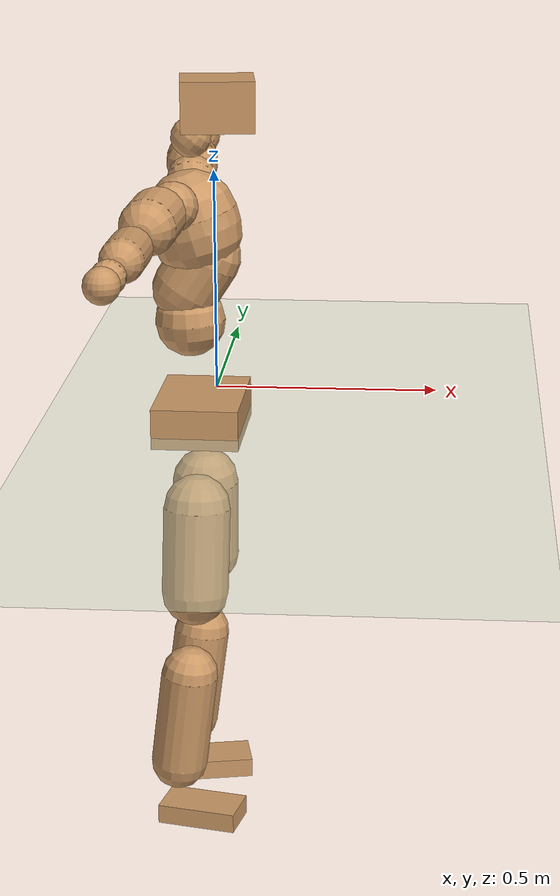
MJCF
<mujoco model="humanoid">
  <compiler coordinate="local" angle="radian"/>
  <default>
    <joint damping="0.0" armature="0.01" stiffness="0.0" limited="true"/>
    <geom conaffinity="1" condim="3" contype="7" margin="0.001" rgba="0.8 0.6 .4 1"/>
  </default>
  <asset>
    <texture type="skybox" builtin="gradient" rgb1=".4 .5 .6" rgb2="0 0 0" width="100" height="100"/>
    <texture builtin="flat" height="1278" mark="cross" markrgb="1 1 1" name="texgeom" random="0.01" rgb1="0.8 0.6 0.4" rgb2="0.8 0.6 0.4" type="cube" width="127"/>
    <texture builtin="checker" height="100" name="texplane" rgb1="0 0 0" rgb2="0.8 0.8 0.8" type="2d" width="100"/>
    <material name="MatPlane" reflectance="0.5" shininess="1" specular="1" texrepeat="60 60" texture="texplane"/>
    <material name="geom" texture="texgeom" texuniform="true"/>
  </asset>
  <worldbody>
    <light cutoff="100" diffuse="1 1 1" dir="-0 0 -1.3" directional="true" exponent="1" pos="0 0 1.3" specular=".1 .1 .1"/>
    <geom conaffinity="1" condim="3" name="floor" pos="0 0 0" rgba="0.8 0.9 0.8 1" size="100 100 .2" type="plane" material="MatPlane"/>
    <body name="Pelvis" pos="0.0012 -0.2463 0.0305">
      <freejoint name="Pelvis"/>
      <geom type="box" contype="1" conaffinity="1" density="5359.374469" pos="-0.0075 0.0001 -0.0138" size="0.0934 0.1306 0.0438" quat="1.0000 0.0000 0.0000 -0.0074" name="Pelvis"/>
      <body name="L_Hip" pos="-0.011 0.0839 -0.1006">
        <joint name="L_Hip_x" type="hinge" pos="0 0 0" axis="1 0 0" stiffness="1600" damping="160" armature="0.02" range="-180.0000 180.0000"/>
        <joint name="L_Hip_y" type="hinge" pos="0 0 0" axis="0 1 0" stiffness="1600" damping="160" armature="0.02" range="-180.0000 180.0000"/>
        <joint name="L_Hip_z" type="hinge" pos="0 0 0" axis="0 0 1" stiffness="1600" damping="160" armature="0.02" range="-180.0000 180.0000"/>
        <geom type="capsule" contype="1" conaffinity="1" density="2040.816327" size="0.0734" fromto="-0.0017 0.0084 -0.1030 -0.0046 0.0230 -0.2837" name="L_Hip"/>
        <body name="L_Knee" pos="-0.0062 0.0314 -0.3867">
          <joint name="L_Knee_x" type="hinge" pos="0 0 0" axis="1 0 0" stiffness="1600" damping="160" armature="0.02" range="-180.0000 180.0000"/>
          <joint name="L_Knee_y" type="hinge" pos="0 0 0" axis="0 1 0" stiffness="1600" damping="160" armature="0.02" range="-180.0000 180.0000"/>
          <joint name="L_Knee_z" type="hinge" pos="0 0 0" axis="0 0 1" stiffness="1600" damping="160" armature="0.02" range="-180.0000 180.0000"/>
          <geom type="capsule" contype="1" conaffinity="1" density="1234.567901" size="0.0624" fromto="-0.0120 -0.0028 -0.0916 -0.0408 -0.0094 -0.3102" name="L_Knee"/>
          <body name="L_Ankle" pos="-0.0528 -0.0122 -0.4018">
            <joint name="L_Ankle_x" type="hinge" pos="0 0 0" axis="1 0 0" stiffness="1600" damping="160" armature="0.02" range="-180.0000 180.0000"/>
            <joint name="L_Ankle_y" type="hinge" pos="0 0 0" axis="0 1 0" stiffness="1600" damping="160" armature="0.02" range="-180.0000 180.0000"/>
            <joint name="L_Ankle_z" type="hinge" pos="0 0 0" axis="0 0 1" stiffness="1600" damping="160" armature="0.02" range="-180.0000 180.0000"/>
            <geom type="box" contype="1" conaffinity="1" density="999.999989" pos="0.0612 0.0125 -0.0282" size="0.0882 0.0495 0.0215" quat="0.9949 0.0000 0.0000 0.1004" name="L_Ankle"/>
            <body name="L_Toe" pos="0.1224 0.0249 -0.0565">
              <joint name="L_Toe_x" type="hinge" pos="0 0 0" axis="1 0 0" stiffness="1000" damping="100" armature="0.02" range="-180.0000 180.0000"/>
              <joint name="L_Toe_y" type="hinge" pos="0 0 0" axis="0 1 0" stiffness="1000" damping="100" armature="0.02" range="-180.0000 180.0000"/>
              <joint name="L_Toe_z" type="hinge" pos="0 0 0" axis="0 0 1" stiffness="1000" damping="100" armature="0.02" range="-180.0000 180.0000"/>
              <geom type="box" contype="1" conaffinity="1" density="8404292.780096" pos="0.0000 0.0000 0.0304" size="0.0009 0.0025 0.0012" quat="0.9943 0.0000 0.0000 0.1065" name="L_Toe"/>
            </body>
          </body>
        </body>
      </body>
      <body name="R_Hip" pos="-0.0083 -0.0799 -0.0991">
        <joint name="R_Hip_x" type="hinge" pos="0 0 0" axis="1 0 0" stiffness="1600" damping="160" armature="0.02" range="-180.0000 180.0000"/>
        <joint name="R_Hip_y" type="hinge" pos="0 0 0" axis="0 1 0" stiffness="1600" damping="160" armature="0.02" range="-180.0000 180.0000"/>
        <joint name="R_Hip_z" type="hinge" pos="0 0 0" axis="0 0 1" stiffness="1600" damping="160" armature="0.02" range="-180.0000 180.0000"/>
        <geom type="capsule" contype="1" conaffinity="1" density="2040.816327" size="0.0725" fromto="-0.0027 -0.0097 -0.1021 -0.0077 -0.0278 -0.2930" name="R_Hip"/>
        <body name="R_Knee" pos="-0.0103 -0.0374 -0.3951">
          <joint name="R_Knee_x" type="hinge" pos="0 0 0" axis="1 0 0" stiffness="1600" damping="160" armature="0.02" range="-180.0000 180.0000"/>
          <joint name="R_Knee_y" type="hinge" pos="0 0 0" axis="0 1 0" stiffness="1600" damping="160" armature="0.02" range="-180.0000 180.0000"/>
          <joint name="R_Knee_z" type="hinge" pos="0 0 0" axis="0 0 1" stiffness="1600" damping="160" armature="0.02" range="-180.0000 180.0000"/>
          <geom type="capsule" contype="1" conaffinity="1" density="1234.567901" size="0.0624" fromto="-0.0118 0.0033 -0.0916 -0.0398 0.0112 -0.3100" name="R_Knee"/>
          <body name="R_Ankle" pos="-0.0516 0.0146 -0.4016">
            <joint name="R_Ankle_x" type="hinge" pos="0 0 0" axis="1 0 0" stiffness="1600" damping="160" armature="0.02" range="-180.0000 180.0000"/>
            <joint name="R_Ankle_y" type="hinge" pos="0 0 0" axis="0 1 0" stiffness="1600" damping="160" armature="0.02" range="-180.0000 180.0000"/>
            <joint name="R_Ankle_z" type="hinge" pos="0 0 0" axis="0 0 1" stiffness="1600" damping="160" armature="0.02" range="-180.0000 180.0000"/>
            <geom type="box" contype="1" conaffinity="1" density="999.999999" pos="0.0631 -0.0135 -0.0248" size="0.0883 0.0491 0.0215" quat="0.9944 0.0000 0.0000 -0.1055" name="R_Ankle"/>
            <body name="R_Toe" pos="0.1262 -0.0271 -0.0497">
              <joint name="R_Toe_x" type="hinge" pos="0 0 0" axis="1 0 0" stiffness="1000" damping="100" armature="0.02" range="-180.0000 180.0000"/>
              <joint name="R_Toe_y" type="hinge" pos="0 0 0" axis="0 1 0" stiffness="1000" damping="100" armature="0.02" range="-180.0000 180.0000"/>
              <joint name="R_Toe_z" type="hinge" pos="0 0 0" axis="0 0 1" stiffness="1000" damping="100" armature="0.02" range="-180.0000 180.0000"/>
              <geom type="box" contype="1" conaffinity="1" density="8201296.981462" pos="0.0000 0.0000 0.0273" size="0.0009 0.0024 0.0012" quat="0.9953 0.0000 0.0000 -0.0965" name="R_Toe"/>
            </body>
          </body>
        </body>
      </body>
      <body name="Torso" pos="-0.0258 -0.0033 0.1167">
        <joint name="Torso_x" type="hinge" pos="0 0 0" axis="1 0 0" stiffness="2000" damping="200" armature="0.02" range="-180.0000 180.0000"/>
        <joint name="Torso_y" type="hinge" pos="0 0 0" axis="0 1 0" stiffness="2000" damping="200" armature="0.02" range="-180.0000 180.0000"/>
        <joint name="Torso_z" type="hinge" pos="0 0 0" axis="0 0 1" stiffness="2000" damping="200" armature="0.02" range="-180.0000 180.0000"/>
        <geom type="capsule" contype="1" conaffinity="1" density="2040.816327" size="0.076" fromto="-0.0029 0.0021 0.0759 -0.0030 0.0021 0.0779" name="Torso"/>
        <body name="Spine" pos="-0.0059 0.0042 0.1539">
          <joint name="Spine_x" type="hinge" pos="0 0 0" axis="1 0 0" stiffness="2000" damping="200" armature="0.02" range="-180.0000 180.0000"/>
          <joint name="Spine_y" type="hinge" pos="0 0 0" axis="0 1 0" stiffness="2000" damping="200" armature="0.02" range="-180.0000 180.0000"/>
          <joint name="Spine_z" type="hinge" pos="0 0 0" axis="0 0 1" stiffness="2000" damping="200" armature="0.02" range="-180.0000 180.0000"/>
          <geom type="capsule" contype="1" conaffinity="1" density="2040.816327" size="0.0737" fromto="0.0398 0.0009 0.0621 -0.0044 -0.0001 -0.0068" name="Spine"/>
          <body name="Chest" pos="0.0354 0.0008 0.0552">
            <joint name="Chest_x" type="hinge" pos="0 0 0" axis="1 0 0" stiffness="2000" damping="200" armature="0.02" range="-180.0000 180.0000"/>
            <joint name="Chest_y" type="hinge" pos="0 0 0" axis="0 1 0" stiffness="2000" damping="200" armature="0.02" range="-180.0000 180.0000"/>
            <joint name="Chest_z" type="hinge" pos="0 0 0" axis="0 0 1" stiffness="2000" damping="200" armature="0.02" range="-180.0000 180.0000"/>
            <geom type="capsule" contype="1" conaffinity="1" density="2040.816327" size="0.0992" fromto="-0.0266 -0.0001 0.0955 -0.0178 -0.0000 0.0640" name="Chest"/>
            <body name="Neck" pos="-0.0522 0.0004 0.2285">
              <joint name="Neck_x" type="hinge" pos="0 0 0" axis="1 0 0" stiffness="1000" damping="100" armature="0.02" range="-180.0000 180.0000"/>
              <joint name="Neck_y" type="hinge" pos="0 0 0" axis="0 1 0" stiffness="1000" damping="100" armature="0.02" range="-180.0000 180.0000"/>
              <joint name="Neck_z" type="hinge" pos="0 0 0" axis="0 0 1" stiffness="1000" damping="100" armature="0.02" range="-180.0000 180.0000"/>
              <geom type="capsule" contype="1" conaffinity="1" density="1000" size="0.0426" fromto="0.0264 0.0024 0.0334 0.0277 0.0025 0.0349" name="Neck"/>
              <body name="Head" pos="0.0541 0.005 0.0683">
                <joint name="Head_x" type="hinge" pos="0 0 0" axis="1 0 0" stiffness="1000" damping="100" armature="0.02" range="-180.0000 180.0000"/>
                <joint name="Head_y" type="hinge" pos="0 0 0" axis="0 1 0" stiffness="1000" damping="100" armature="0.02" range="-180.0000 180.0000"/>
                <joint name="Head_z" type="hinge" pos="0 0 0" axis="0 0 1" stiffness="1000" damping="100" armature="0.02" range="-180.0000 180.0000"/>
                <geom type="box" contype="1" conaffinity="1" density="2250" pos="0.0280 0.0035 0.0352" size="0.0776 0.0612 0.0539" quat="0.9981 0.0000 0.0000 0.0618" name="Head"/>
              </body>
            </body>
            <body name="L_Thorax" pos="-0.0363 0.079 0.1267">
              <joint name="L_Thorax_x" type="hinge" pos="0 0 0" axis="1 0 0" stiffness="1000" damping="100" armature="0.02" range="-180.0000 180.0000"/>
              <joint name="L_Thorax_y" type="hinge" pos="0 0 0" axis="0 1 0" stiffness="1000" damping="100" armature="0.02" range="-180.0000 180.0000"/>
              <joint name="L_Thorax_z" type="hinge" pos="0 0 0" axis="0 0 1" stiffness="1000" damping="100" armature="0.02" range="-180.0000 180.0000"/>
              <geom type="capsule" contype="1" conaffinity="1" density="1000" size="0.0539" fromto="-0.0040 0.0498 0.0203 -0.0031 0.0387 0.0157" name="L_Thorax"/>
              <body name="L_Shoulder" pos="-0.007 0.0885 0.036">
                <joint name="L_Shoulder_x" type="hinge" pos="0 0 0" axis="1 0 0" stiffness="1000" damping="100" armature="0.02" range="-720.0000 720.0000"/>
                <joint name="L_Shoulder_y" type="hinge" pos="0 0 0" axis="0 1 0" stiffness="1000" damping="100" armature="0.02" range="-720.0000 720.0000"/>
                <joint name="L_Shoulder_z" type="hinge" pos="0 0 0" axis="0 0 1" stiffness="1000" damping="100" armature="0.02" range="-720.0000 720.0000"/>
                <geom type="capsule" contype="1" conaffinity="1" density="1000" size="0.0569" fromto="-0.0106 0.0861 -0.0054 -0.0211 0.1719 -0.0108" name="L_Shoulder"/>
                <body name="L_Elbow" pos="-0.0317 0.258 -0.0162">
                  <joint name="L_Elbow_x" type="hinge" pos="0 0 0" axis="1 0 0" stiffness="1000" damping="100" armature="0.02" range="-720.0000 720.0000"/>
                  <joint name="L_Elbow_y" type="hinge" pos="0 0 0" axis="0 1 0" stiffness="1000" damping="100" armature="0.02" range="-720.0000 720.0000"/>
                  <joint name="L_Elbow_z" type="hinge" pos="0 0 0" axis="0 0 1" stiffness="1000" damping="100" armature="0.02" range="-720.0000 720.0000"/>
                  <geom type="capsule" contype="1" conaffinity="1" density="1000" size="0.0431" fromto="0.0009 0.0730 0.0028 0.0022 0.1770 0.0068" name="L_Elbow"/>
                  <body name="L_Wrist" pos="0.0031 0.25 0.0096">
                    <joint name="L_Wrist_x" type="hinge" pos="0 0 0" axis="1 0 0" stiffness="600" damping="60" armature="0.02" range="-180.0000 180.0000"/>
                    <joint name="L_Wrist_y" type="hinge" pos="0 0 0" axis="0 1 0" stiffness="600" damping="60" armature="0.02" range="-180.0000 180.0000"/>
                    <joint name="L_Wrist_z" type="hinge" pos="0 0 0" axis="0 0 1" stiffness="600" damping="60" armature="0.02" range="-180.0000 180.0000"/>
                    <geom type="capsule" contype="1" conaffinity="1" density="1000" size="0.0324" fromto="-0.0068 0.0414 -0.0051 -0.0071 0.0434 -0.0053" name="L_Wrist"/>
                    <body name="L_Hand" pos="-0.0139 0.0848 -0.0104">
                      <joint name="L_Hand_x" type="hinge" pos="0 0 0" axis="1 0 0" stiffness="600" damping="60" armature="0.02" range="-180.0000 180.0000"/>
                      <joint name="L_Hand_y" type="hinge" pos="0 0 0" axis="0 1 0" stiffness="600" damping="60" armature="0.02" range="-180.0000 180.0000"/>
                      <joint name="L_Hand_z" type="hinge" pos="0 0 0" axis="0 0 1" stiffness="600" damping="60" armature="0.02" range="-180.0000 180.0000"/>
                      <geom type="sphere" contype="1" conaffinity="1" density="1000" size="0.0343" pos="0.0000 0.0000 0.0000" name="L_Hand"/>
                    </body>
                  </body>
                </body>
              </body>
            </body>
            <body name="R_Thorax" pos="-0.0448 -0.0797 0.1234">
              <joint name="R_Thorax_x" type="hinge" pos="0 0 0" axis="1 0 0" stiffness="1000" damping="100" armature="0.02" range="-180.0000 180.0000"/>
              <joint name="R_Thorax_y" type="hinge" pos="0 0 0" axis="0 1 0" stiffness="1000" damping="100" armature="0.02" range="-180.0000 180.0000"/>
              <joint name="R_Thorax_z" type="hinge" pos="0 0 0" axis="0 0 1" stiffness="1000" damping="100" armature="0.02" range="-180.0000 180.0000"/>
              <geom type="capsule" contype="1" conaffinity="1" density="1000" size="0.0528" fromto="-0.0047 -0.0491 0.0190 -0.0045 -0.0465 0.0180" name="R_Thorax"/>
              <body name="R_Shoulder" pos="-0.0092 -0.0956 0.0371">
                <joint name="R_Shoulder_x" type="hinge" pos="0 0 0" axis="1 0 0" stiffness="1000" damping="100" armature="0.02" range="-720.0000 720.0000"/>
                <joint name="R_Shoulder_y" type="hinge" pos="0 0 0" axis="0 1 0" stiffness="1000" damping="100" armature="0.02" range="-720.0000 720.0000"/>
                <joint name="R_Shoulder_z" type="hinge" pos="0 0 0" axis="0 0 1" stiffness="1000" damping="100" armature="0.02" range="-720.0000 720.0000"/>
                <geom type="capsule" contype="1" conaffinity="1" density="1000" size="0.0579" fromto="-0.0085 -0.0873 -0.0058 -0.0169 -0.1729 -0.0114" name="R_Shoulder"/>
                <body name="R_Elbow" pos="-0.0254 -0.2602 -0.0172">
                  <joint name="R_Elbow_x" type="hinge" pos="0 0 0" axis="1 0 0" stiffness="1000" damping="100" armature="0.02" range="-720.0000 720.0000"/>
                  <joint name="R_Elbow_y" type="hinge" pos="0 0 0" axis="0 1 0" stiffness="1000" damping="100" armature="0.02" range="-720.0000 720.0000"/>
                  <joint name="R_Elbow_z" type="hinge" pos="0 0 0" axis="0 0 1" stiffness="1000" damping="100" armature="0.02" range="-720.0000 720.0000"/>
                  <geom type="capsule" contype="1" conaffinity="1" density="1000" size="0.0429" fromto="-0.0004 -0.0729 0.0023 -0.0010 -0.1859 0.0059" name="R_Elbow"/>
                  <body name="R_Wrist" pos="-0.0014 -0.2588 0.0082">
                    <joint name="R_Wrist_x" type="hinge" pos="0 0 0" axis="1 0 0" stiffness="600" damping="60" armature="0.02" range="-180.0000 180.0000"/>
                    <joint name="R_Wrist_y" type="hinge" pos="0 0 0" axis="0 1 0" stiffness="600" damping="60" armature="0.02" range="-180.0000 180.0000"/>
                    <joint name="R_Wrist_z" type="hinge" pos="0 0 0" axis="0 0 1" stiffness="600" damping="60" armature="0.02" range="-180.0000 180.0000"/>
                    <geom type="capsule" contype="1" conaffinity="1" density="1000" size="0.0331" fromto="-0.0055 -0.0420 -0.0037 -0.0058 -0.0440 -0.0039" name="R_Wrist"/>
                    <body name="R_Hand" pos="-0.0113 -0.086 -0.0077">
                      <joint name="R_Hand_x" type="hinge" pos="0 0 0" axis="1 0 0" stiffness="600" damping="60" armature="0.02" range="-180.0000 180.0000"/>
                      <joint name="R_Hand_y" type="hinge" pos="0 0 0" axis="0 1 0" stiffness="600" damping="60" armature="0.02" range="-180.0000 180.0000"/>
                      <joint name="R_Hand_z" type="hinge" pos="0 0 0" axis="0 0 1" stiffness="600" damping="60" armature="0.02" range="-180.0000 180.0000"/>
                      <geom type="sphere" contype="1" conaffinity="1" density="1000" size="0.0346" pos="0.0000 0.0000 0.0000" name="R_Hand"/>
                    </body>
                  </body>
                </body>
              </body>
            </body>
          </body>
        </body>
      </body>
    </body>
  </worldbody>
  <actuator>
    <motor name="L_Hip_x" joint="L_Hip_x" gear="500"/>
    <motor name="L_Hip_y" joint="L_Hip_y" gear="500"/>
    <motor name="L_Hip_z" joint="L_Hip_z" gear="500"/>
    <motor name="L_Knee_x" joint="L_Knee_x" gear="500"/>
    <motor name="L_Knee_y" joint="L_Knee_y" gear="500"/>
    <motor name="L_Knee_z" joint="L_Knee_z" gear="500"/>
    <motor name="L_Ankle_x" joint="L_Ankle_x" gear="500"/>
    <motor name="L_Ankle_y" joint="L_Ankle_y" gear="500"/>
    <motor name="L_Ankle_z" joint="L_Ankle_z" gear="500"/>
    <motor name="L_Toe_x" joint="L_Toe_x" gear="500"/>
    <motor name="L_Toe_y" joint="L_Toe_y" gear="500"/>
    <motor name="L_Toe_z" joint="L_Toe_z" gear="500"/>
    <motor name="R_Hip_x" joint="R_Hip_x" gear="500"/>
    <motor name="R_Hip_y" joint="R_Hip_y" gear="500"/>
    <motor name="R_Hip_z" joint="R_Hip_z" gear="500"/>
    <motor name="R_Knee_x" joint="R_Knee_x" gear="500"/>
    <motor name="R_Knee_y" joint="R_Knee_y" gear="500"/>
    <motor name="R_Knee_z" joint="R_Knee_z" gear="500"/>
    <motor name="R_Ankle_x" joint="R_Ankle_x" gear="500"/>
    <motor name="R_Ankle_y" joint="R_Ankle_y" gear="500"/>
    <motor name="R_Ankle_z" joint="R_Ankle_z" gear="500"/>
    <motor name="R_Toe_x" joint="R_Toe_x" gear="500"/>
    <motor name="R_Toe_y" joint="R_Toe_y" gear="500"/>
    <motor name="R_Toe_z" joint="R_Toe_z" gear="500"/>
    <motor name="Torso_x" joint="Torso_x" gear="500"/>
    <motor name="Torso_y" joint="Torso_y" gear="500"/>
    <motor name="Torso_z" joint="Torso_z" gear="500"/>
    <motor name="Spine_x" joint="Spine_x" gear="500"/>
    <motor name="Spine_y" joint="Spine_y" gear="500"/>
    <motor name="Spine_z" joint="Spine_z" gear="500"/>
    <motor name="Chest_x" joint="Chest_x" gear="500"/>
    <motor name="Chest_y" joint="Chest_y" gear="500"/>
    <motor name="Chest_z" joint="Chest_z" gear="500"/>
    <motor name="Neck_x" joint="Neck_x" gear="500"/>
    <motor name="Neck_y" joint="Neck_y" gear="500"/>
    <motor name="Neck_z" joint="Neck_z" gear="500"/>
    <motor name="Head_x" joint="Head_x" gear="500"/>
    <motor name="Head_y" joint="Head_y" gear="500"/>
    <motor name="Head_z" joint="Head_z" gear="500"/>
    <motor name="L_Thorax_x" joint="L_Thorax_x" gear="500"/>
    <motor name="L_Thorax_y" joint="L_Thorax_y" gear="500"/>
    <motor name="L_Thorax_z" joint="L_Thorax_z" gear="500"/>
    <motor name="L_Shoulder_x" joint="L_Shoulder_x" gear="500"/>
    <motor name="L_Shoulder_y" joint="L_Shoulder_y" gear="500"/>
    <motor name="L_Shoulder_z" joint="L_Shoulder_z" gear="500"/>
    <motor name="L_Elbow_x" joint="L_Elbow_x" gear="500"/>
    <motor name="L_Elbow_y" joint="L_Elbow_y" gear="500"/>
    <motor name="L_Elbow_z" joint="L_Elbow_z" gear="500"/>
    <motor name="L_Wrist_x" joint="L_Wrist_x" gear="500"/>
    <motor name="L_Wrist_y" joint="L_Wrist_y" gear="500"/>
    <motor name="L_Wrist_z" joint="L_Wrist_z" gear="500"/>
    <motor name="L_Hand_x" joint="L_Hand_x" gear="500"/>
    <motor name="L_Hand_y" joint="L_Hand_y" gear="500"/>
    <motor name="L_Hand_z" joint="L_Hand_z" gear="500"/>
    <motor name="R_Thorax_x" joint="R_Thorax_x" gear="500"/>
    <motor name="R_Thorax_y" joint="R_Thorax_y" gear="500"/>
    <motor name="R_Thorax_z" joint="R_Thorax_z" gear="500"/>
    <motor name="R_Shoulder_x" joint="R_Shoulder_x" gear="500"/>
    <motor name="R_Shoulder_y" joint="R_Shoulder_y" gear="500"/>
    <motor name="R_Shoulder_z" joint="R_Shoulder_z" gear="500"/>
    <motor name="R_Elbow_x" joint="R_Elbow_x" gear="500"/>
    <motor name="R_Elbow_y" joint="R_Elbow_y" gear="500"/>
    <motor name="R_Elbow_z" joint="R_Elbow_z" gear="500"/>
    <motor name="R_Wrist_x" joint="R_Wrist_x" gear="500"/>
    <motor name="R_Wrist_y" joint="R_Wrist_y" gear="500"/>
    <motor name="R_Wrist_z" joint="R_Wrist_z" gear="500"/>
    <motor name="R_Hand_x" joint="R_Hand_x" gear="500"/>
    <motor name="R_Hand_y" joint="R_Hand_y" gear="500"/>
    <motor name="R_Hand_z" joint="R_Hand_z" gear="500"/>
  </actuator>
  <contact>
    <exclude body1="Torso" body2="Chest"/>
    <exclude body1="Head" body2="Chest"/>
    <exclude body1="R_Knee" body2="R_Toe"/>
    <exclude body1="R_Knee" body2="L_Ankle"/>
    <exclude body1="R_Knee" body2="L_Toe"/>
    <exclude body1="L_Knee" body2="L_Toe"/>
    <exclude body1="L_Knee" body2="R_Ankle"/>
    <exclude body1="L_Knee" body2="R_Toe"/>
    <exclude body1="L_Shoulder" body2="Chest"/>
    <exclude body1="R_Shoulder" body2="Chest"/>
  </contact>
  <sensor/>
  <size njmax="700" nconmax="700"/>
</mujoco>
